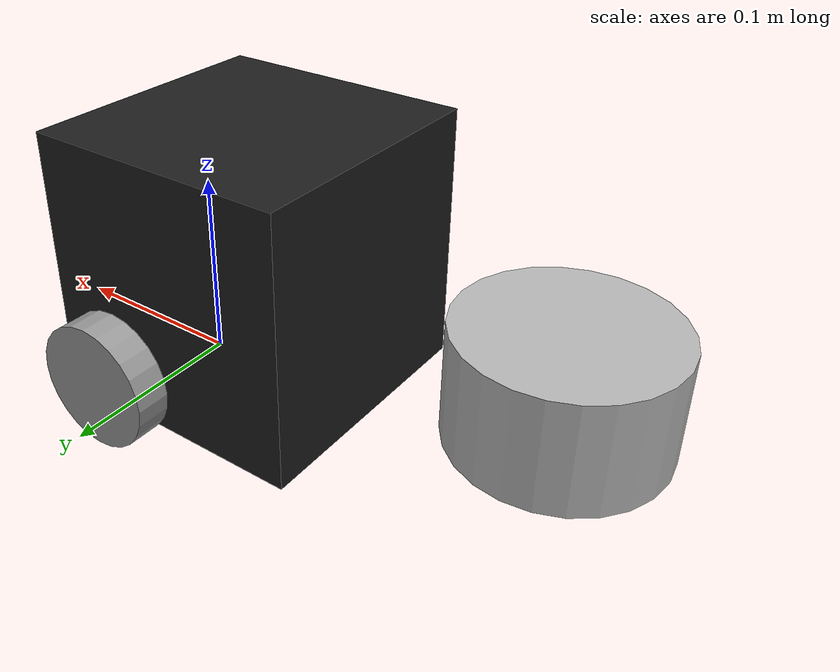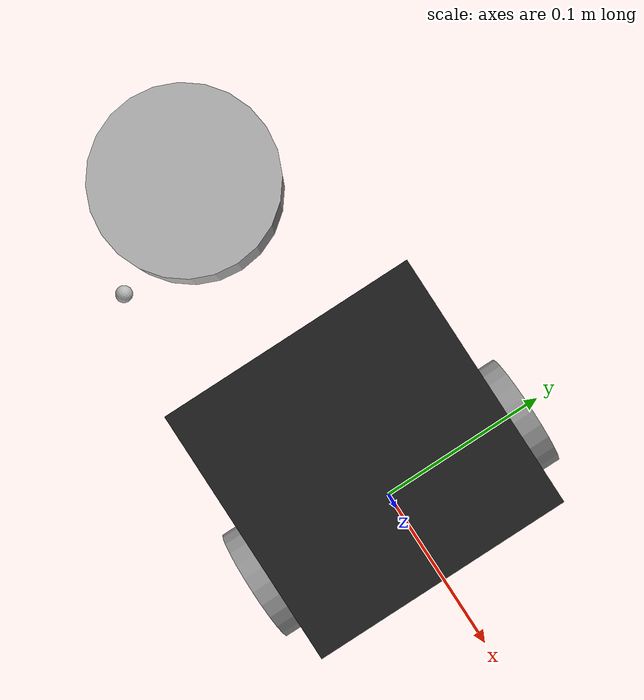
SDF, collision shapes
<?xml version="1.0" ?>
<sdf version="1.5">
  <model name="burger">
     <link name="base_footprint"/>

    <link name="base_link">

      <inertial>
        <pose>-0.032 0 0.070 0 0 0</pose>
        <inertia>
          <ixx>7.2397393e-01</ixx>
          <ixy>4.686399e-10</ixy>
          <ixz>-1.09525703e-08</ixz>
          <iyy>7.2397393e-01</iyy>
          <iyz>2.8582649e-09</iyz>
          <izz>6.53050163e-01</izz>
        </inertia>
        <mass>8.2573504e-01</mass>
      </inertial>

      <collision name="base_collision">
        <pose>-0.032 0 0.070 0 0 0</pose>
        <geometry>
          <box>
            <size>0.140 0.140 0.140</size>
          </box>
        </geometry>
      </collision>

      <visual name="base_visual">
        <pose>-0.032 0 0 0 0 0</pose>
        <geometry>
          <mesh>
            <uri>model://turtlebot3_burger/meshes/bases/burger_base.stl</uri>
            <scale>0.001 0.001 0.001</scale>
          </mesh>
        </geometry>
        <material>
          <script>
            <uri>model://media/materials/scripts/assessment_materials.material</uri>
            <name>black</name>
          </script>
        </material>
      </visual>
    </link>

     <link name="imu_link">
      <sensor name="tb3_imu" type="imu">
        <always_on>true</always_on>
        <update_rate>200</update_rate>
        <imu>
          <angular_velocity>
            <x>
              <noise type="gaussian">
                <mean>0.0</mean>
                <stddev>2e-4</stddev>
              </noise>
            </x>
            <y>
              <noise type="gaussian">
                <mean>0.0</mean>
                <stddev>2e-4</stddev>
              </noise>
            </y>
            <z>
              <noise type="gaussian">
                <mean>0.0</mean>
                <stddev>2e-4</stddev>
              </noise>
            </z>
          </angular_velocity>
          <linear_acceleration>
            <x>
              <noise type="gaussian">
                <mean>0.0</mean>
                <stddev>1.7e-2</stddev>
              </noise>
            </x>
            <y>
              <noise type="gaussian">
                <mean>0.0</mean>
                <stddev>1.7e-2</stddev>
              </noise>
            </y>
            <z>
              <noise type="gaussian">
                <mean>0.0</mean>
                <stddev>1.7e-2</stddev>
              </noise>
            </z>
          </linear_acceleration>
        </imu>
        <plugin name="turtlebot3_imu" filename="libgazebo_ros_imu_sensor.so">
          <ros>
            <remapping>~/out:=imu</remapping>
          </ros>
        </plugin>
      </sensor>
    </link>

    <link name="base_scan">
      <inertial>
        <pose>-0.20 0 0.161 0 0 0</pose>
        <inertia>
          <ixx>0.001</ixx>
          <ixy>0.000</ixy>
          <ixz>0.000</ixz>
          <iyy>0.001</iyy>
          <iyz>0.000</iyz>
          <izz>0.001</izz>
        </inertia>
        <mass>0.114</mass>
      </inertial>

      <collision name="lidar_sensor_collision">
        <pose>-0.20 0 0.061 0 0 0</pose>
        <geometry>
          <cylinder>
            <radius>0.0508</radius>
            <length>0.055</length>
          </cylinder>
        </geometry>
      </collision>

      <visual name="lidar_sensor_visual">
        <pose>-0.032 0 0.171 0 0 0</pose>
        <geometry>
          <mesh>
            <uri>model://turtlebot3_burger/meshes/sensors/lds.stl</uri>
            <scale>0.001 0.001 0.001</scale>
          </mesh>
          <material>
          <script>
            <uri>model://media/materials/scripts/assessment_materials.material</uri>
            <name>grey_outlined</name>
          </script>
        </material>
        </geometry>
      </visual>

       <sensor name="hls_lfcd_lds" type="ray">
        <always_on>true</always_on>
        <visualize>true</visualize>
        <pose>-0.064 0 0.121 0 0 0</pose>
        <update_rate>5</update_rate>
        <ray>
          <scan>
            <horizontal>
              <samples>360</samples>
              <resolution>1.000000</resolution>
              <min_angle>0.000000</min_angle>
              <max_angle>6.280000</max_angle>
            </horizontal>
          </scan>
          <range>
            <min>0.20000</min>
            <max>1.0</max>
            <resolution>0.015000</resolution>
          </range>
          <noise>
            <type>gaussian</type>
            <mean>0.0</mean>
            <stddev>0.01</stddev>
          </noise>
        </ray>
        <plugin name="turtlebot3_laserscan" filename="libgazebo_ros_ray_sensor.so">
          <ros>
            <remapping>~/out:=scan</remapping>
          </ros>
          <output_type>sensor_msgs/LaserScan</output_type>
          <frame_name>base_scan</frame_name>
        </plugin>
      </sensor>
    </link>

    <link name="wheel_left_link">

      <inertial>
        <pose>0 0.08 0.023 -1.57 0 0</pose>
        <inertia>
          <ixx>1.8158194e-03</ixx>
          <ixy>-9.3392e-12</ixy>
          <ixz>1.04909e-11</ixz>
          <iyy>3.2922126e-03</iyy>
          <iyz>5.75694e-11</iyz>
          <izz>1.8158194e-03</izz>
        </inertia>
        <mass>2.8498940e-02</mass>
      </inertial>

      <collision name="wheel_left_collision">
        <pose>0 0.08 0.023 -1.57 0 0</pose>
        <geometry>
          <cylinder>
            <radius>0.033</radius>
            <length>0.018</length>
          </cylinder>
        </geometry>
        <surface>
          <!-- This friction pamareter don't contain reliable data!! -->
          <friction>
            <ode>
              <mu>100000.0</mu>
              <mu2>100000.0</mu2>
              <fdir1>0 0 0</fdir1>
              <slip1>0.0</slip1>
              <slip2>0.0</slip2>
            </ode>
          </friction>
          <contact>
            <ode>
              <soft_cfm>0</soft_cfm>
              <soft_erp>0.2</soft_erp>
              <kp>1e+5</kp>
              <kd>1</kd>
              <max_vel>0.01</max_vel>
              <min_depth>0.001</min_depth>
            </ode>
          </contact>
        </surface>
      </collision>

      <visual name="wheel_left_visual">
        <pose>0 0.08 0.023 0 0 0</pose>
        <geometry>
          <mesh>
            <uri>model://turtlebot3_burger/meshes/wheels/left_tire.stl</uri>
            <scale>0.001 0.001 0.001</scale>
          </mesh>
        </geometry>
        <material>
          <script>
            <uri>model://media/materials/scripts/assessment_materials.material</uri>
            <name>grey_outlined</name>
          </script>
        </material>
      </visual>
    </link>

    <link name="wheel_right_link">

      <inertial>
        <pose>0.0 -0.08 0.023 -1.57 0 0</pose>
        <inertia>
          <ixx>1.8158194e-03</ixx>
          <ixy>-9.3392e-12</ixy>
          <ixz>1.04909e-11</ixz>
          <iyy>3.2922126e-03</iyy>
          <iyz>5.75694e-11</iyz>
          <izz>1.8158194e-03</izz>
        </inertia>
        <mass>2.8498940e-02</mass>
      </inertial>

      <collision name="wheel_right_collision">
        <pose>0.0 -0.08 0.023 -1.57 0 0</pose>
        <geometry>
          <cylinder>
            <radius>0.033</radius>
            <length>0.018</length>
          </cylinder>
        </geometry>
        <surface>
          <!-- This friction pamareter don't contain reliable data!! -->
          <friction>
            <ode>
              <mu>100000.0</mu>
              <mu2>100000.0</mu2>
              <fdir1>0 0 0</fdir1>
              <slip1>0.0</slip1>
              <slip2>0.0</slip2>
            </ode>
          </friction>
          <contact>
            <ode>
              <soft_cfm>0</soft_cfm>
              <soft_erp>0.2</soft_erp>
              <kp>1e+5</kp>
              <kd>1</kd>
              <max_vel>0.01</max_vel>
              <min_depth>0.001</min_depth>
            </ode>
          </contact>
        </surface>
      </collision>

      <visual name="wheel_right_visual">
        <pose>0.0 -0.08 0.023 0 0 0</pose>
        <geometry>
          <mesh>
            <uri>model://turtlebot3_burger/meshes/wheels/right_tire.stl</uri>
            <scale>0.001 0.001 0.001</scale>
          </mesh>
        </geometry>
        <material>
          <script>
            <uri>model://media/materials/scripts/assessment_materials.material</uri>
            <name>grey_outlined</name>
          </script>
        </material>
      </visual>
    </link>

    <link name='caster_back_right_link'>
      <pose>-0.177 -0.064 -0.004 -1.57 0 0</pose>
      <inertial>
        <mass>0.001</mass>
        <inertia>
          <ixx>0.00001</ixx>
          <ixy>0.000</ixy>
          <ixz>0.000</ixz>
          <iyy>0.00001</iyy>
          <iyz>0.000</iyz>
          <izz>0.00001</izz>
        </inertia>
      </inertial>
      <collision name='collision'>
        <geometry>
          <sphere>
            <radius>0.005000</radius>
          </sphere>
        </geometry>
        <surface>
          <contact>
            <ode>
              <soft_cfm>0</soft_cfm>
              <soft_erp>0.2</soft_erp>
              <kp>1e+5</kp>
              <kd>1</kd>
              <max_vel>0.01</max_vel>
              <min_depth>0.001</min_depth>
            </ode>
          </contact>
        </surface>
      </collision>
    </link>

     <link name='caster_back_link'>
      <pose>-0.081 0 -0.004 -1.57 0 0</pose>
      <inertial>
        <mass>0.005</mass>
        <inertia>
          <ixx>0.001</ixx>
          <ixy>0.000</ixy>
          <ixz>0.000</ixz>
          <iyy>0.001</iyy>
          <iyz>0.000</iyz>
          <izz>0.001</izz>
        </inertia>
      </inertial>
      <collision name='collision'>
        <geometry>
          <sphere>
            <radius>0.005000</radius>
          </sphere>
        </geometry>
        <surface>
          <contact>
            <ode>
              <soft_cfm>0</soft_cfm>
              <soft_erp>0.2</soft_erp>
              <kp>1e+5</kp>
              <kd>1</kd>
              <max_vel>0.01</max_vel>
              <min_depth>0.001</min_depth>
            </ode>
          </contact>
        </surface>
      </collision>
    </link>

    <link name="camera_link"/>

    <link name="camera_rgb_optical_frame">
      <inertial>
        <pose>0.076 0.0 0.093 0 0 0</pose>
        <inertia>
          <ixx>0.001</ixx>
          <ixy>0.000</ixy>
          <ixz>0.000</ixz>
          <iyy>0.001</iyy>
          <iyz>0.000</iyz>
          <izz>0.001</izz>
        </inertia>
        <mass>0.035</mass>
      </inertial>

      <pose>0.076 0.0 0.093 0 0.35 0</pose>
      <sensor name="camera" type="camera">
        <always_on>true</always_on>
        <visualize>true</visualize>
        <update_rate>30</update_rate>
        <camera name="picam">
          <horizontal_fov>2.085595</horizontal_fov>
          <image>
              <width>640</width>
              <height>480</height>
              <format>R8G8B8</format>
          </image>
          <clip>
              <near>0.01</near>
              <far>10</far>
          </clip>
          <noise>
            <type>gaussian</type>
            <mean>0.0</mean>
            <stddev>0.007</stddev>
          </noise>
        </camera>
          <plugin name="camera_driver" filename="libgazebo_ros_camera.so">
            <ros>
            </ros>
          </plugin>
      </sensor>
    </link>

    <joint name="base_joint" type="fixed">
      <parent>base_footprint</parent>
      <child>base_link</child>
      <pose>0.0 0.0 0.010 0 0 0</pose>
    </joint>

    <joint name="wheel_left_joint" type="revolute">
      <parent>base_link</parent>
      <child>wheel_left_link</child>
      <pose>0.0 0.144 0.023 -1.57 0 0</pose>
      <axis>
        <xyz>0 0 1</xyz>
      </axis>
    </joint>

    <joint name="wheel_right_joint" type="revolute">
      <parent>base_link</parent>
      <child>wheel_right_link</child>
      <pose>0.0 -0.144 0.023 -1.57 0 0</pose>
      <axis>
        <xyz>0 0 1</xyz>
      </axis>
    </joint>

    <joint name='caster_back_right_joint' type='ball'>
      <parent>base_link</parent>
      <child>caster_back_right_link</child>
    </joint>

    <joint name='caster_back_left_joint' type='ball'>
      <parent>base_link</parent>
      <child>caster_back_left_link</child>
    </joint>

    <joint name="imu_joint" type="fixed">
      <parent>base_link</parent>
      <child>imu_link</child>
      <pose>-0.032 0 0.068 0 0 0</pose>
      <axis>
        <xyz>0 0 1</xyz>
      </axis>
    </joint>

    <joint name="lidar_joint" type="fixed">
      <parent>base_link</parent>
      <child>base_scan</child>
      <pose>-0.064 0 0.121 0 0 0</pose>
      <axis>
        <xyz>0 0 1</xyz>
      </axis>
    </joint>

    <joint name="camera_joint" type="fixed">
      <parent>base_link</parent>
      <child>camera_link</child>
      <pose>0.073 -0.011 0.084 0 0 0</pose>
      <axis>
        <xyz>0 0 1</xyz>
      </axis>
    </joint>

    <joint name="camera_rgb_joint" type="fixed">
      <parent>camera_link</parent>
      <child>camera_rgb_optical_frame</child>
      <pose>0.003 0.011 0.009 0 0 0</pose>
      <axis>
        <xyz>0 0 1</xyz>
      </axis>
    </joint>

    <joint name="puck1_joint" type="fixed">
      <parent>base_link</parent>
      <child>puck1</child>
      <axis>
        <xyz>0 0 1</xyz>
      </axis>
    </joint>

    <plugin name="turtlebot3_diff_drive" filename="libgazebo_ros_diff_drive.so">

      <!-- https://github.com/ros-planning/navigation2/blob/humble/nav2_bringup/worlds/waffle.model#L461-L463 -->
      <ros>
        <!--since gazebo_plugins publish tf topic in global namespace /tf only and it
        cannot be remapped like (namespace/tf) through launch arguments -->
        <remapping>/tf:=tf</remapping>
      </ros>

      <update_rate>30</update_rate>

      <!-- wheels -->
      <left_joint>wheel_left_joint</left_joint>
      <right_joint>wheel_right_joint</right_joint>

      <!-- kinematics -->
      <wheel_separation>0.287</wheel_separation>
      <wheel_diameter>0.066</wheel_diameter>

      <!-- limits -->
      <max_wheel_torque>20</max_wheel_torque>
      <max_wheel_acceleration>1.0</max_wheel_acceleration>

      <command_topic>cmd_vel</command_topic>

      <!-- output -->
      <publish_odom>true</publish_odom>
      <publish_odom_tf>true</publish_odom_tf>
      <publish_wheel_tf>false</publish_wheel_tf>

      <odometry_topic>odom</odometry_topic>
      <odometry_frame>odom</odometry_frame>
      <robot_base_frame>base_footprint</robot_base_frame>
      <!-- https://github.com/ros-simulation/gazebo_ros_pkgs/blob/ros2/gazebo_plugins/src/gazebo_ros_diff_drive.cpp#L90-L97 -->
      <!-- ENCODER = 0, WORLD = 1 -->
      <odometry_source>0</odometry_source>

    </plugin>

    <plugin name="turtlebot3_joint_state" filename="libgazebo_ros_joint_state_publisher.so">
      <ros>
        <remapping>~/out:=joint_states</remapping>
      </ros>
      <update_rate>30</update_rate>
      <joint_name>wheel_left_joint</joint_name>
      <joint_name>wheel_right_joint</joint_name>
    </plugin>

  </model>
</sdf>
